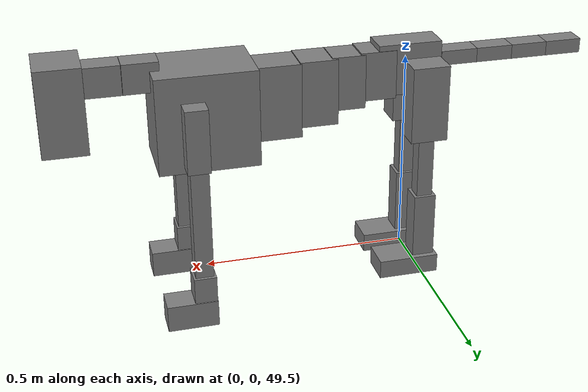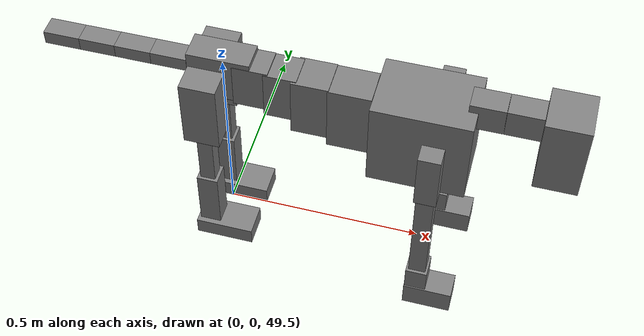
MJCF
<mujoco model="dog">

    <default>
        <joint armature="0.02" stiffness="1" damping="0.2" limited="true"/>
        <geom condim="3" friction="1 0.05 0.05" margin="0.01"/>
        <motor ctrllimited="true" ctrlrange="-1.0 1.0" forcelimited="true" gear="50"/>
    </default>

    <compiler inertiafromgeom="true" angle="radian"/>

    <option timestep="0.016" iterations="50" tolerance="1e-10" solver="Newton" jacobian="dense" cone="pyramidal"/>

    <size nconmax="20000" njmax="60000" nstack="5000000"/>
    <visual>
        <map force="0.1" zfar="30"/>
        <rgba haze="0.15 0.25 0.35 1"/>
        <quality shadowsize="2048"/>
        <global offwidth="800" offheight="800"/>
    </visual>

    <asset>
        <texture type="skybox" builtin="gradient" rgb1="0.3 0.5 0.7" rgb2="0 0 0" width="512" height="512"/>
        <texture name="texplane" type="2d" builtin="checker" rgb1=".2 .3 .4" rgb2=".1 0.15 0.2" width="512" height="512"
                 mark="cross" markrgb=".8 .8 .8"/>
        <texture name="texgeom" type="cube" builtin="flat" mark="cross" width="127" height="1278" rgb1="0.8 0.6 0.4"
                 rgb2="0.8 0.6 0.4" markrgb="1 1 1" random="0.01"/>

        <material name="matplane" reflectance="0.3" texture="texplane" texrepeat="1 1" texuniform="true"/>
        <material name="matgeom" texture="texgeom" texuniform="true" rgba="0.8 0.6 .4 1"/>
    </asset>

    <worldbody>
        <geom name="floor" pos="0 0 0" size="0 0 .25" type="plane" material="matplane" condim="3"/>

        <light directional="false" diffuse=".2 .2 .2" specular="0 0 0" pos="0 0 5" dir="0 0 -1" castshadow="false"/>
        <light mode="targetbodycom" target="torso" directional="false" diffuse=".8 .8 .8" specular="0.3 0.3 0.3"
               pos="0 0 4.0" dir="0 0 -1"/>

        <body name="root" pos="0 0 50">
            <freejoint name="root_1"/>
            <geom type="box" pos="0 0 -0.02" size="0.0774  0.0358  0.063" density="2030"/>

            <body name="spine1" pos="0.054 0 0">
                <joint name="spine1_y" axis="0 1 0" range="0 0.7" limited="true"/>
                <geom type="box" pos="0.02375 0 -0.03" size="0.04375  0.0375  0.05985" density="2030"/>

                <body name="spine2" pos="0.0612 0 0">
                    <joint name="spine2_y" axis="0 1 0" range="-0.15 0.15" limited="true"/>
                    <geom type="box" pos="0.03555  0  -0.04" size="0.04055  0.039  0.06615" density="2030"/>

                    <body name="spine3" pos="0.0730 0 0">
                        <joint name="spine3_y" axis="0 1 0" range="-0.15 0.15" limited="true"/>
                        <geom type="box" pos="0.03555  0  -0.057" size="0.04555  0.0445  0.081" density="2030"/>

                        <body name="spine4" pos="0.0780 0 0">
                            <joint name="spine4_y" axis="0 1 0" range="-0.15 0.15" limited="true"/>
                            <geom type="box" pos="0.05265  0  -0.07" size="0.05265  0.045  0.09135" density="2030"/>

                            <body name="torso" pos="0.1082 0 0">
                                <joint name="torso_y" axis="0 1 0" range="-0.15 0.15" limited="true"/>
                                <geom type="box" pos="0.11925  0  -0.085" size="0.11925  0.085  0.11745"
                                      density="2030"/>

                                <body name="neck1" pos="0.2160  0   0.0180">
                                    <joint name="neck1_y" axis="0 1 0" range="-1.2  -1" limited="true"/>
                                    <geom type="box" pos="0.0423  0  0" size="0.0423  0.03  0.036" density="2325"/>

                                    <body name="neck2" pos="0.0853  0  0">
                                        <joint name="neck2_y" axis="0 1 0" range="0.1  0" limited="true"/>
                                        <geom type="box" pos="0.0423  0  0" size="0.0423  0.03  0.036" density="2325"/>

                                        <body name="head" pos="0.0853  0  0">
                                            <joint name="head_y" axis="0 1 0" range="-0.3  -0.2" limited="true"/>
                                            <geom type="box" pos="0.0531  0  -0.055" size="0.0531  0.06  0.1044"
                                                  density="4030"/>

                                        </body>
                                    </body>
                                </body>

                                <body name="front_shoulder" pos="0.156  0   -0.0480">
                                    <joint name="front_shoulder_y" axis="0 1 0" range="-1 1.5" limited="true"/>
                                    <geom type="box" pos="0 0.13 -0.0501" size="0.0269  0.0230  0.0768" density="1158"/>
                                    <geom type="box" pos="0 -0.13 -0.0501" size="0.0269  0.0230  0.0768"
                                          density="1158"/>

                                    <body name="front_elbow" pos="0  0  -0.1002">
                                        <joint name="front_elbow_y" axis="0 1 0" range="-2 0" limited="true"/>
                                        <geom type="box" pos="0 0.13 -0.1540" size="0.0216  0.0221  0.1540"
                                              density="1081"/>
                                        <geom type="box" pos="0 -0.13 -0.1540" size="0.0216  0.0221  0.1540"
                                              density="1081"/>

                                        <body name="front_wrist" pos="0  0  -0.3079">
                                            <joint name="front_wrist_y" axis="0 1 0" range="-0.2 0" limited="true"/>
                                            <geom type="box" pos="0 0.13 -0.0327" size="0.0268  0.0298  0.0458"
                                                  density="1664"/>
                                            <geom type="box" pos="0 -0.13 -0.0327" size="0.0268  0.0298  0.0458"
                                                  density="1664"/>

                                            <body name="front_finger_end" pos="0  0  -0.0654">
                                                <joint name="front_finger_y" axis="0 1 0" range="-0.4 1"
                                                       limited="true"/>
                                                <geom type="box" pos="0.0331  0.13  -0.0176"
                                                      size="0.0606  0.0331  0.0326" density="1515"/>
                                                <geom type="box" pos="0.0331  -0.13  -0.0176"
                                                      size="0.0606  0.0331  0.0326" density="1515"/>

                                            </body>

                                        </body>
                                    </body>
                                </body>

                            </body>
                        </body>
                    </body>
                </body>
            </body>

            <body name="back_hip" pos="-0.03 0 -0.018">
                <joint name="back_hip_y" axis="0 1 0" range="-1.5 0.3" limited="true"/>
                <geom type="box" pos="0 0.07 -0.0709" size="0.0449  0.0352  0.0937" density="1154"/>
                <geom type="box" pos="0 -0.07 -0.0709" size="0.0449  0.0352  0.0937" density="1154"/>

                <body name="back_knee" pos="0  0  -0.1417">
                    <joint name="back_knee_y" axis="0 1 0" range="0 2.8" limited="true"/>
                    <geom type="box" pos="0 0.07 -0.0927" size="0.0194  0.0191  0.1082" density="1227"/>
                    <geom type="box" pos="0 -0.07 -0.0927" size="0.0194  0.0191  0.1082" density="1227"/>

                    <body name="back_ankle" pos="0  0  -0.1854">
                        <joint name="back_ankle_y" axis="0 1 0" range="-2.2 0" limited="true"/>
                        <geom type="box" pos="0 0.07 -0.0825" size="0.0269  0.0269  0.0937" density="1284"/>
                        <geom type="box" pos="0 -0.07 -0.0825" size="0.0269  0.0269  0.0937" density="1284"/>

                        <body name="back_toe_end" pos="0  0  -0.1649">
                            <joint name="back_toe_y" axis="0 1 0" range="-0.4 1" limited="true"/>
                            <geom type="box" pos="0.0405  0.07  -0.0078" size="0.0743  0.0405  0.0228" density="1515"/>
                            <geom type="box" pos="0.0405  -0.07  -0.0078" size="0.0743  0.0405  0.0228" density="1515"/>

                        </body>
                    </body>
                </body>
            </body>

            <body name="tail1" pos="-0.074 0 -0.006">
                <joint name="tail1_y" axis="0 1 0" range="-0.2 0.2" limited="true"/>
                <geom type="box" pos="-0.0536  0  0" size="0.045  0.025  0.0175" density="1587"/>

                <body name="tail2" pos="-0.09 0 0">
                    <joint name="tail2_y" axis="0 1 0" range="-0.2 0.2" limited="true"/>
                    <geom type="box" pos="-0.0536  0  0" size="0.045  0.025  0.0175" density="1587"/>

                    <body name="tail3" pos="-0.09 0 0">
                        <joint name="tail3_y" axis="0 1 0" range="-0.2 0.2" limited="true"/>
                        <geom type="box" pos="-0.0536  0  0" size="0.045  0.025  0.0175" density="1587"/>

                        <body name="tail4" pos="-0.09 0 0">
                            <joint name="tail4_y" axis="0 1 0" range="-0.2 0.2" limited="true"/>
                            <geom type="box" pos="-0.0536  0  0" size="0.045  0.025  0.0175" density="1587"/>

                        </body>
                    </body>
                </body>
            </body>
        </body>
    </worldbody>

    <actuator>
        <motor joint="spine1_y" forcerange="-150 150     "/>
        <motor joint="spine2_y" forcerange="-150 150     "/>
        <motor joint="spine3_y" forcerange="-150 150     "/>
        <motor joint="spine4_y" forcerange="-150 150     "/>
        <motor joint="torso_y" forcerange="-150 150     "/>
        <motor joint="neck1_y" forcerange="-100 100       "/>
        <motor joint="neck2_y" forcerange="-100 100       "/>
        <motor joint="head_y" forcerange="-150 150       "/>
        <motor joint="front_shoulder_y" forcerange="-144.21 109.28"/>
        <motor joint="front_elbow_y" forcerange="-128.57 132.06"/>
        <motor joint="front_wrist_y" forcerange="-117.10 121.33"/>
        <motor joint="front_finger_y" forcerange="-85.53 50.75"/>
        <motor joint="back_hip_y" forcerange="-274.86 394.23"/>
        <motor joint="back_knee_y" forcerange="-207.94 269.58"/>
        <motor joint="back_angle_y" forcerange="-109.36 221.50"/>
        <motor joint="back_toe_y" forcerange="-131.86 112.37"/>
        <motor joint="tail1_y" forcerange="-50 50     "/>
        <motor joint="tail2_y" forcerange="-50 50     "/>
        <motor joint="tail3_y" forcerange="-50 50     "/>
        <motor joint="tail4_y" forcerange="-50 50     "/>
    </actuator>
</mujoco>
